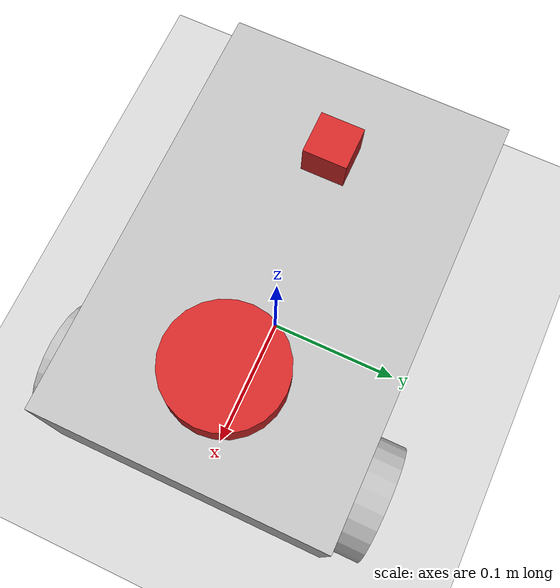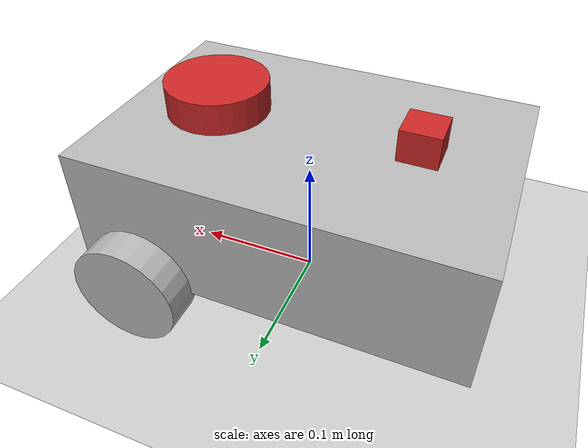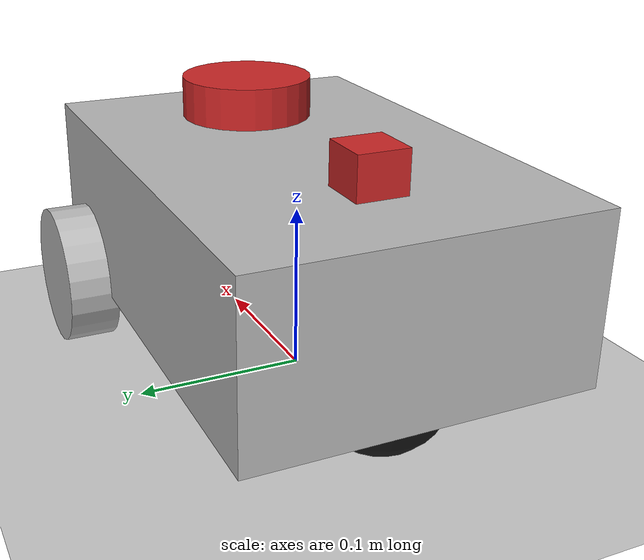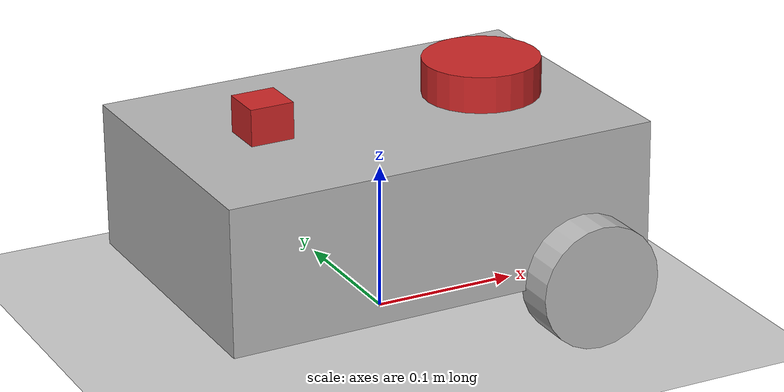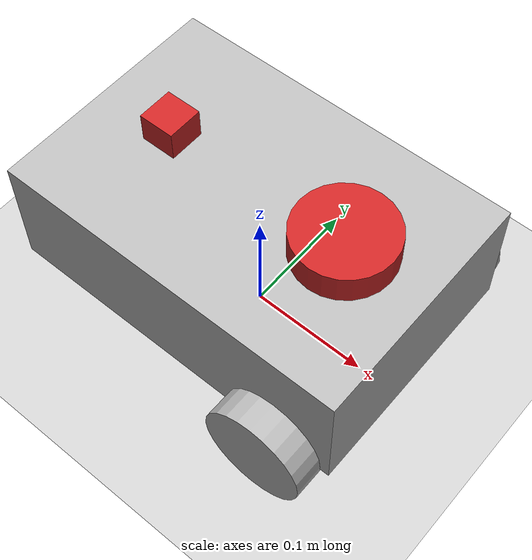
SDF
<sdf version="1.7">
 <world name="simple_world">
  <light name="sun" type="directional">
   <pose>0 0 10 0 -0 0</pose>
   <diffuse>1 1 1 1</diffuse>
   <specular>0.1 0.1 0.1 1</specular>
   <direction>-0.5 0.1 -0.9</direction>
   <attenuation><range>10</range></attenuation>
   <spot><inner_angle>0</inner_angle><outer_angle>0</outer_angle><falloff>0</falloff></spot>
  </light>
  <model name="ground_plane">
   <static>1</static>
   <link name="link">
    <collision name="collision">
     <geometry><plane><normal>0 0 1</normal><size>50 50</size></plane></geometry>
    </collision>
    <visual name="visual">
     <geometry><plane><normal>0 0 1</normal><size>50 50</size></plane></geometry>
     <material><ambient>0.7 0.7 0.7 1</ambient><diffuse>0.8 0.8 0.8 1</diffuse></material>
    </visual>
   </link>
  </model>
  <physics type="ode">
   <max_step_size>0.001</max_step_size>
   <real_time_update_rate>500</real_time_update_rate>
   <real_time_factor>1</real_time_factor>
   <gravity>0 0 -9.8</gravity>
  </physics>
  <atmosphere type="adiabatic"/>
  <gravity>0 0 -9.8</gravity>
  <magnetic_field>6e-06 2.3e-05 -4.2e-05</magnetic_field>
  <scene><ambient>0.4 0.4 0.4 1</ambient><background>0.7 0.7 0.7 1</background><shadows>1</shadows></scene>
  <audio><device>default</device></audio>
  <spherical_coordinates>
   <surface_model>EARTH_WGS84</surface_model>
   <latitude_deg>0</latitude_deg>
   <longitude_deg>0</longitude_deg>
   <elevation>0</elevation>
   <heading_deg>0</heading_deg>
  </spherical_coordinates>
  <model name="simple_robot_car">
   <link name="base_link">
    <inertial>
     <pose>0 0 0.088525 0 -0 0</pose>
     <mass>3.05</mass>
     <inertia>
      <ixx>0.0304984</ixx>
      <ixy>0</ixy>
      <ixz>0</ixz>
      <iyy>0.0304984</iyy>
      <iyz>0</iyz>
      <izz>0.0301</izz>
     </inertia>
    </inertial>
    <collision name="base_link_collision">
     <pose>0 0 0.09 0 -0 0</pose>
     <geometry><box><size>0.3 0.2 0.1</size></box></geometry>
    </collision>
    <collision name="base_link_fixed_joint_lump__center_spherical_wheel_collision_1">
     <pose>-0.1 0 0.0425 0 -0 0</pose>
     <geometry><sphere><radius>0.04</radius></sphere></geometry>
     <surface><friction><ode><mu>0.001</mu><mu2>0.001</mu2></ode></friction></surface>
    </collision>
    <collision name="base_link_fixed_joint_lump__camera_link_collision_2">
     <pose>-0.08 0 0.15 1.5708 -0 3.14159</pose>
     <geometry><box><size>0.03 0.03 0.03</size></box></geometry>
    </collision>
    <collision name="base_link_fixed_joint_lump__laser_frame_collision_3">
     <pose>0.08 0 0.15 0 -0 0</pose>
     <geometry><cylinder><length>0.03</length><radius>0.04</radius></cylinder></geometry>
    </collision>
    <visual name="base_link_visual">
     <pose>0 0 0.09 0 -0 0</pose>
     <geometry><box><size>0.3 0.2 0.1</size></box></geometry>
    </visual>
    <visual name="base_link_fixed_joint_lump__center_spherical_wheel_visual_1">
     <pose>-0.1 0 0.0425 0 -0 0</pose>
     <geometry><sphere><radius>0.04</radius></sphere></geometry>
     <material>
      <script><name>Gazebo/Black</name><uri>file://media/materials/scripts/gazebo.material</uri></script>
     </material>
    </visual>
    <visual name="base_link_fixed_joint_lump__camera_link_visual_2">
     <pose>-0.08 0 0.15 0 -0 3.14159</pose>
     <geometry><box><size>0.03 0.03 0.03</size></box></geometry>
     <material>
      <script><name>Gazebo/Red</name><uri>file://media/materials/scripts/gazebo.material</uri></script>
     </material>
    </visual>
    <visual name="base_link_fixed_joint_lump__laser_frame_visual_3">
     <pose>0.08 0 0.15 0 -0 0</pose>
     <geometry><cylinder><length>0.03</length><radius>0.04</radius></cylinder></geometry>
     <material>
      <script><name>Gazebo/Red</name><uri>file://media/materials/scripts/gazebo.material</uri></script>
     </material>
    </visual>
    <sensor name="camera" type="camera">
     <visualize>1</visualize>
     <update_rate>10</update_rate>
     <camera>
      <horizontal_fov>1.089</horizontal_fov>
      <image><format>R8G8B8</format><width>640</width><height>480</height></image>
      <clip><near>0.05</near><far>8</far></clip>
     </camera>
     <plugin name="camera_controller" filename="libgazebo_ros_camera.so">
      <frame_name>camera_link_optical</frame_name>
     </plugin>
     <pose>-0.08 0 0.15 0 -0 3.14159</pose>
    </sensor>
    <sensor name="laser" type="ray">
     <visualize>1</visualize>
     <update_rate>10</update_rate>
     <ray>
      <scan>
       <horizontal>
        <samples>360</samples>
        <min_angle>-3.14</min_angle>
        <max_angle>3.14</max_angle>
        <resolution>1</resolution>
       </horizontal>
       <vertical><samples>1</samples><min_angle>0</min_angle><max_angle>0</max_angle></vertical>
      </scan>
      <range><min>0.3</min><max>12</max></range>
     </ray>
     <plugin name="laser_controller" filename="libgazebo_ros_ray_sensor.so">
      <ros><remapping>~/out:=/scan</remapping></ros>
      <output_type>sensor_msgs/LaserScan</output_type>
      <frame_name>laser_frame</frame_name>
     </plugin>
     <pose>0.08 0 0.15 0 -0 0</pose>
    </sensor>
   </link>
   <joint name="body_left_wheel" type="revolute">
    <pose relative_to="base_link">0.1 -0.11 0.0425 0 -0 0</pose>
    <parent>base_link</parent>
    <child>left_wheel</child>
    <axis>
     <xyz>0 1 0</xyz>
     <limit><lower>-1e+16</lower><upper>1e+16</upper></limit>
     <dynamics><spring_reference>0</spring_reference><spring_stiffness>0</spring_stiffness></dynamics>
    </axis>
   </joint>
   <link name="left_wheel">
    <pose relative_to="body_left_wheel">0 0 0 0 -0 0</pose>
    <inertial>
     <mass>0.3</mass>
     <inertia><ixx>0.0005</ixx><ixy>0</ixy><ixz>0</ixz><iyy>0.0005</iyy><iyz>0</iyz><izz>0.0005</izz></inertia>
    </inertial>
    <collision name="left_wheel_collision">
     <pose>0 0 0 1.5708 -0 0</pose>
     <geometry><cylinder><length>0.03</length><radius>0.0425</radius></cylinder></geometry>
    </collision>
    <visual name="left_wheel_visual">
     <pose>0 0 0 1.5708 -0 0</pose>
     <geometry><cylinder><length>0.03</length><radius>0.0425</radius></cylinder></geometry>
    </visual>
   </link>
   <joint name="body_right_wheel" type="revolute">
    <pose relative_to="base_link">0.1 0.11 0.0425 0 -0 0</pose>
    <parent>base_link</parent>
    <child>right_wheel</child>
    <axis>
     <xyz>0 1 0</xyz>
     <limit><lower>-1e+16</lower><upper>1e+16</upper></limit>
     <dynamics><spring_reference>0</spring_reference><spring_stiffness>0</spring_stiffness></dynamics>
    </axis>
   </joint>
   <link name="right_wheel">
    <pose relative_to="body_right_wheel">0 0 0 0 -0 0</pose>
    <inertial>
     <mass>0.3</mass>
     <inertia><ixx>0.0005</ixx><ixy>0</ixy><ixz>0</ixz><iyy>0.0005</iyy><iyz>0</iyz><izz>0.0005</izz></inertia>
    </inertial>
    <collision name="right_wheel_collision">
     <pose>0 0 0 1.5708 -0 0</pose>
     <geometry><cylinder><length>0.03</length><radius>0.0425</radius></cylinder></geometry>
    </collision>
    <visual name="right_wheel_visual">
     <pose>0 0 0 1.5708 -0 0</pose>
     <geometry><cylinder><length>0.03</length><radius>0.0425</radius></cylinder></geometry>
    </visual>
   </link>
   <static>0</static>
   <plugin name="gazebo_diff_drive" filename="libgazebo_ros_diff_drive.so">
    <ros><namespace>/</namespace><remapping>cmd_vel:=/cmd_vel</remapping></ros>
    <left_joint>body_left_wheel</left_joint>
    <right_joint>body_right_wheel</right_joint>
    <wheel_separation>0.22</wheel_separation>
    <wheel_diameter>0.08</wheel_diameter>
    <max_wheel_torque>5.0</max_wheel_torque>
    <max_wheel_acceleration>10.0</max_wheel_acceleration>
    <odometry_frame>odom</odometry_frame>
    <robot_base_frame>base_link</robot_base_frame>
    <publish_odometry>1</publish_odometry>
    <publish_wheel_tf>1</publish_wheel_tf>
    <publish_odom_tf>1</publish_odom_tf>
   </plugin>
   <pose>-0.00268 -0.000125 -0.001249 0 -0.01252 -0.00032</pose>
  </model>
 </world>
</sdf>
